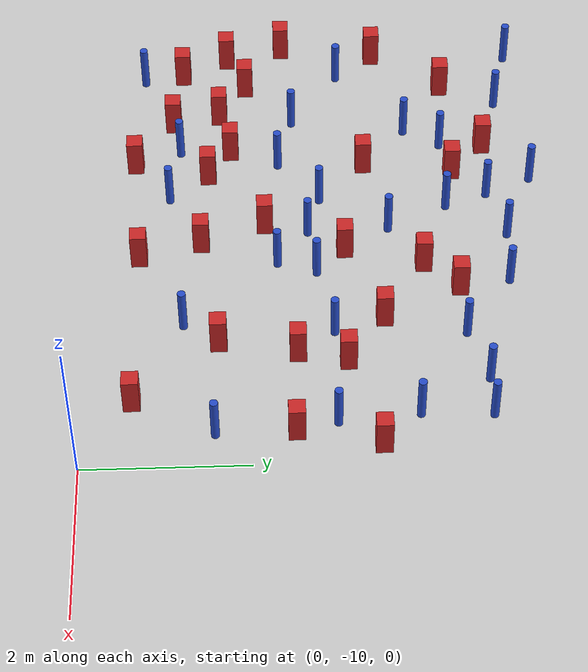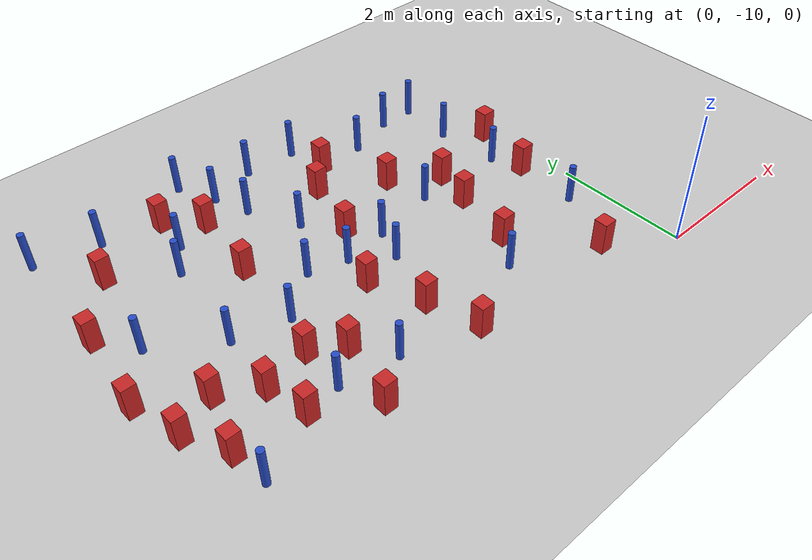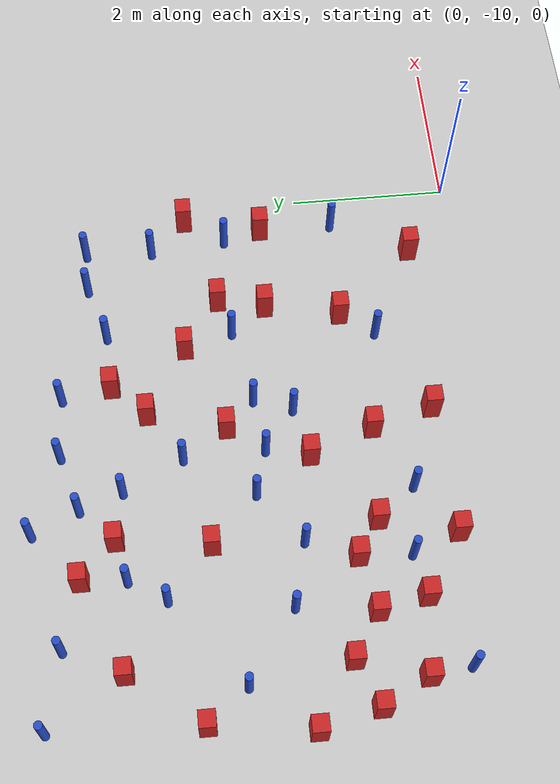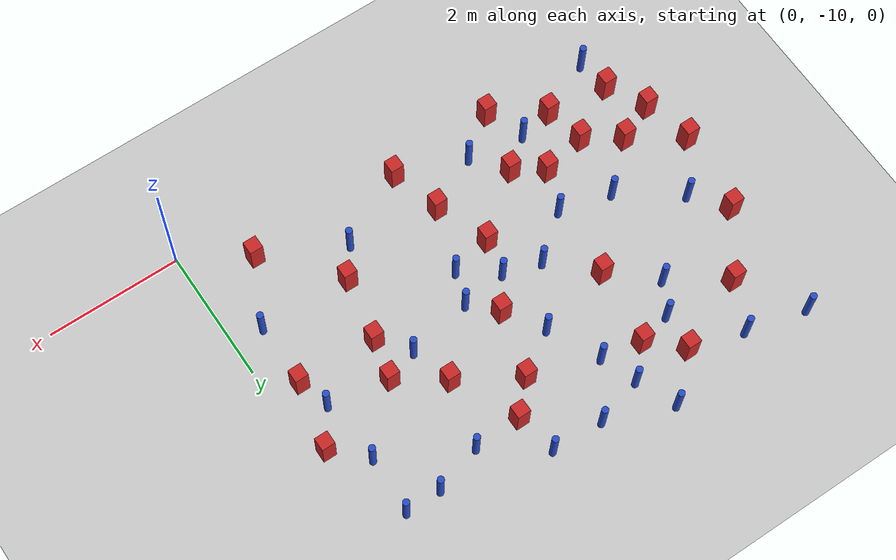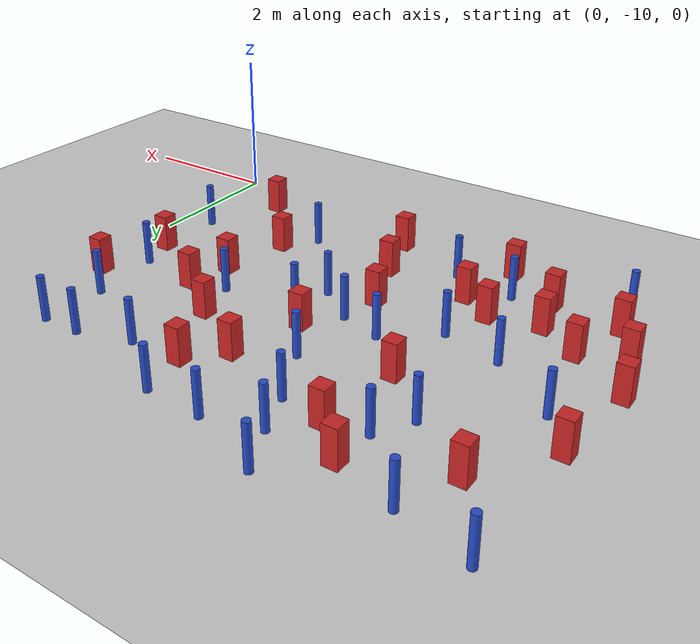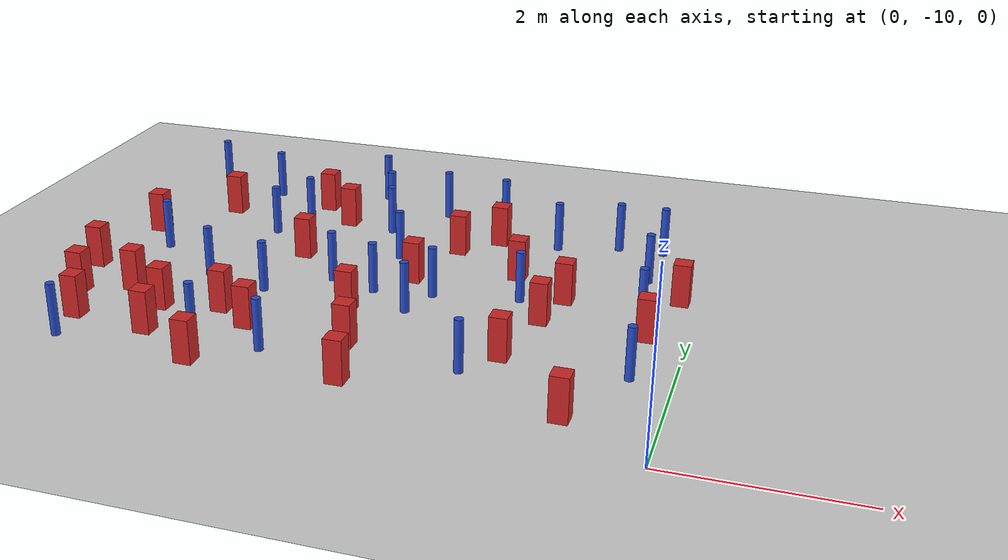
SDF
<sdf version="1.6">
 <world name="default">
  <model name="ground_plane">
   <static>1</static>
   <link name="link">
    <collision name="collision">
     <geometry><plane><normal>0 0 1</normal><size>100 100</size></plane></geometry>
     <surface><friction><ode><mu>100</mu><mu2>50</mu2></ode></friction></surface>
    </collision>
    <visual name="visual">
     <cast_shadows>0</cast_shadows>
     <geometry><plane><normal>0 0 1</normal><size>100 100</size></plane></geometry>
     <material>
      <ambient>1.0 1.0 1.0 1.0</ambient>
      <diffuse>0.8 0.8 0.8 1.0</diffuse>
      <specular>0.01 0.01 0.01 1.000000</specular>
     </material>
    </visual>
   </link>
  </model>
  <model name="pole_obstacle7">
   <static>true</static>
   <pose>-1.17192480887 -5.19381114242 -3.09024884793e-07 -7.19054271912e-07 -2.11315075134e-07 -1.93935509265e-07</pose>
   <link name="link">
    <pose>0 0 0.3 0 -0 0</pose>
    <inertial>
     <mass>1</mass>
     <inertia><ixx>0.145833</ixx><ixy>0</ixy><ixz>0</ixz><iyy>0.145833</iyy><iyz>0</iyz><izz>0.125</izz></inertia>
    </inertial>
    <collision name="collision">
     <geometry><cylinder><radius>0.05</radius><length>.6</length></cylinder></geometry>
    </collision>
    <visual name="visual">
     <geometry><cylinder><radius>0.05</radius><length>.6</length></cylinder></geometry>
     <material>
      <script><name>Gazebo/Blue</name><uri>file://media/materials/scripts/gazebo.material</uri></script>
     </material>
    </visual>
   </link>
  </model>
  <model name="pole_obstacle9">
   <static>true</static>
   <pose>-1.88588892181 -5.40821671252 -3.09024884793e-07 -7.19054271912e-07 -2.11315075134e-07 -1.93935509265e-07</pose>
   <link name="link">
    <pose>0 0 0.3 0 -0 0</pose>
    <inertial>
     <mass>1</mass>
     <inertia><ixx>0.145833</ixx><ixy>0</ixy><ixz>0</ixz><iyy>0.145833</iyy><iyz>0</iyz><izz>0.125</izz></inertia>
    </inertial>
    <collision name="collision">
     <geometry><cylinder><radius>0.05</radius><length>.6</length></cylinder></geometry>
    </collision>
    <visual name="visual">
     <geometry><cylinder><radius>0.05</radius><length>.6</length></cylinder></geometry>
     <material>
      <script><name>Gazebo/Blue</name><uri>file://media/materials/scripts/gazebo.material</uri></script>
     </material>
    </visual>
   </link>
  </model>
  <model name="pole_obstacle10">
   <static>true</static>
   <pose>-3.60791752947 -7.27064303545 -3.09024884793e-07 -7.19054271912e-07 -2.11315075134e-07 -1.93935509266e-07</pose>
   <link name="link">
    <pose>0 0 0.3 0 -0 0</pose>
    <inertial>
     <mass>1</mass>
     <inertia><ixx>0.145833</ixx><ixy>0</ixy><ixz>0</ixz><iyy>0.145833</iyy><iyz>0</iyz><izz>0.125</izz></inertia>
    </inertial>
    <collision name="collision">
     <geometry><cylinder><radius>0.05</radius><length>.6</length></cylinder></geometry>
    </collision>
    <visual name="visual">
     <geometry><cylinder><radius>0.05</radius><length>.6</length></cylinder></geometry>
     <material>
      <script><name>Gazebo/Blue</name><uri>file://media/materials/scripts/gazebo.material</uri></script>
     </material>
    </visual>
   </link>
  </model>
  <model name="pole_obstacle12">
   <static>true</static>
   <pose>-0.575961744489 -7.00694699162 -3.09024884793e-07 -7.19054271912e-07 -2.11315075129e-07 -1.93935509261e-07</pose>
   <link name="link">
    <pose>0 0 0.3 0 -0 0</pose>
    <inertial>
     <mass>1</mass>
     <inertia><ixx>0.145833</ixx><ixy>0</ixy><ixz>0</ixz><iyy>0.145833</iyy><iyz>0</iyz><izz>0.125</izz></inertia>
    </inertial>
    <collision name="collision">
     <geometry><cylinder><radius>0.05</radius><length>.6</length></cylinder></geometry>
    </collision>
    <visual name="visual">
     <geometry><cylinder><radius>0.05</radius><length>.6</length></cylinder></geometry>
     <material>
      <script><name>Gazebo/Blue</name><uri>file://media/materials/scripts/gazebo.material</uri></script>
     </material>
    </visual>
   </link>
  </model>
  <model name="pole_obstacle15">
   <static>true</static>
   <pose>-4.20136053964 -4.98345175366 -3.09024884793e-07 -7.19054271911e-07 -2.1131507516e-07 -1.93935509277e-07</pose>
   <link name="link">
    <pose>0 0 0.3 0 -0 0</pose>
    <inertial>
     <mass>1</mass>
     <inertia><ixx>0.145833</ixx><ixy>0</ixy><ixz>0</ixz><iyy>0.145833</iyy><iyz>0</iyz><izz>0.125</izz></inertia>
    </inertial>
    <collision name="collision">
     <geometry><cylinder><radius>0.05</radius><length>.6</length></cylinder></geometry>
    </collision>
    <visual name="visual">
     <geometry><cylinder><radius>0.05</radius><length>.6</length></cylinder></geometry>
     <material>
      <script><name>Gazebo/Blue</name><uri>file://media/materials/scripts/gazebo.material</uri></script>
     </material>
    </visual>
   </link>
  </model>
  <model name="pole_obstacle26">
   <static>true</static>
   <pose>-0.443716990972 -8.43226374889 -3.09024884793e-07 -7.19054271911e-07 -2.11315075166e-07 -1.93935509282e-07</pose>
   <link name="link">
    <pose>0 0 0.3 0 -0 0</pose>
    <inertial>
     <mass>1</mass>
     <inertia><ixx>0.145833</ixx><ixy>0</ixy><ixz>0</ixz><iyy>0.145833</iyy><iyz>0</iyz><izz>0.125</izz></inertia>
    </inertial>
    <collision name="collision">
     <geometry><cylinder><radius>0.05</radius><length>.6</length></cylinder></geometry>
    </collision>
    <visual name="visual">
     <geometry><cylinder><radius>0.05</radius><length>.6</length></cylinder></geometry>
     <material>
      <script><name>Gazebo/Blue</name><uri>file://media/materials/scripts/gazebo.material</uri></script>
     </material>
    </visual>
   </link>
  </model>
  <model name="square_post_obstacle22">
   <static>true</static>
   <pose>-2.60363259935 -5.43729169527 -4.36207812815e-07 3.75137919937e-06 9.77721102514e-07 2.47381364184e-05</pose>
   <link name="link">
    <pose>0 0 0.25 0 -0 0</pose>
    <inertial>
     <mass>100</mass>
     <inertia>
      <ixx>0.166667</ixx>
      <ixy>0</ixy>
      <ixz>0</ixz>
      <iyy>0.166667</iyy>
      <iyz>0</iyz>
      <izz>0.166667</izz>
     </inertia>
    </inertial>
    <collision name="collision"><geometry><box><size>.2 .2 .5</size></box></geometry></collision>
    <visual name="visual">
     <geometry><box><size>.2 .2 .5</size></box></geometry>
     <material>
      <script><name>Gazebo/Red</name><uri>file://media/materials/scripts/gazebo.material</uri></script>
     </material>
    </visual>
   </link>
  </model>
  <model name="square_post_obstacle25">
   <static>true</static>
   <pose>-6.83598262515 -6.32217190997 -4.36207812815e-07 3.75137919937e-06 9.77721102514e-07 2.47381364184e-05</pose>
   <link name="link">
    <pose>0 0 0.25 0 -0 0</pose>
    <inertial>
     <mass>100</mass>
     <inertia>
      <ixx>0.166667</ixx>
      <ixy>0</ixy>
      <ixz>0</ixz>
      <iyy>0.166667</iyy>
      <iyz>0</iyz>
      <izz>0.166667</izz>
     </inertia>
    </inertial>
    <collision name="collision"><geometry><box><size>.2 .2 .5</size></box></geometry></collision>
    <visual name="visual">
     <geometry><box><size>.2 .2 .5</size></box></geometry>
     <material>
      <script><name>Gazebo/Red</name><uri>file://media/materials/scripts/gazebo.material</uri></script>
     </material>
    </visual>
   </link>
  </model>
  <model name="pole_obstacle32">
   <static>true</static>
   <pose>-4.00805264346 -5.51298378663 -3.09024884793e-07 -7.19054271911e-07 -2.11315075165e-07 -1.9393550928e-07</pose>
   <link name="link">
    <pose>0 0 0.3 0 -0 0</pose>
    <inertial>
     <mass>1</mass>
     <inertia><ixx>0.145833</ixx><ixy>0</ixy><ixz>0</ixz><iyy>0.145833</iyy><iyz>0</iyz><izz>0.125</izz></inertia>
    </inertial>
    <collision name="collision">
     <geometry><cylinder><radius>0.05</radius><length>.6</length></cylinder></geometry>
    </collision>
    <visual name="visual">
     <geometry><cylinder><radius>0.05</radius><length>.6</length></cylinder></geometry>
     <material>
      <script><name>Gazebo/Blue</name><uri>file://media/materials/scripts/gazebo.material</uri></script>
     </material>
    </visual>
   </link>
  </model>
  <model name="pole_obstacle34">
   <static>true</static>
   <pose>-5.07428625589 -8.86969374546 -3.09024884793e-07 -7.19054271912e-07 -2.1131507513e-07 -1.93935509261e-07</pose>
   <link name="link">
    <pose>0 0 0.3 0 -0 0</pose>
    <inertial>
     <mass>1</mass>
     <inertia><ixx>0.145833</ixx><ixy>0</ixy><ixz>0</ixz><iyy>0.145833</iyy><iyz>0</iyz><izz>0.125</izz></inertia>
    </inertial>
    <collision name="collision">
     <geometry><cylinder><radius>0.05</radius><length>.6</length></cylinder></geometry>
    </collision>
    <visual name="visual">
     <geometry><cylinder><radius>0.05</radius><length>.6</length></cylinder></geometry>
     <material>
      <script><name>Gazebo/Blue</name><uri>file://media/materials/scripts/gazebo.material</uri></script>
     </material>
    </visual>
   </link>
  </model>
  <model name="pole_obstacle35">
   <static>true</static>
   <pose>-2.11056786974 -8.8134225359 -3.09024884848e-07 -7.19054271902e-07 -2.11315075199e-07 -1.93935509286e-07</pose>
   <link name="link">
    <pose>0 0 0.3 0 -0 0</pose>
    <inertial>
     <mass>1</mass>
     <inertia><ixx>0.145833</ixx><ixy>0</ixy><ixz>0</ixz><iyy>0.145833</iyy><iyz>0</iyz><izz>0.125</izz></inertia>
    </inertial>
    <collision name="collision">
     <geometry><cylinder><radius>0.05</radius><length>.6</length></cylinder></geometry>
    </collision>
    <visual name="visual">
     <geometry><cylinder><radius>0.05</radius><length>.6</length></cylinder></geometry>
     <material>
      <script><name>Gazebo/Blue</name><uri>file://media/materials/scripts/gazebo.material</uri></script>
     </material>
    </visual>
   </link>
  </model>
  <model name="square_post_obstacle33">
   <static>true</static>
   <pose>-1.61386421451 -7.44447705341 -4.36207812815e-07 3.75137919937e-06 9.77721102514e-07 2.47381364184e-05</pose>
   <link name="link">
    <pose>0 0 0.25 0 -0 0</pose>
    <inertial>
     <mass>100</mass>
     <inertia>
      <ixx>0.166667</ixx>
      <ixy>0</ixy>
      <ixz>0</ixz>
      <iyy>0.166667</iyy>
      <iyz>0</iyz>
      <izz>0.166667</izz>
     </inertia>
    </inertial>
    <collision name="collision"><geometry><box><size>.2 .2 .5</size></box></geometry></collision>
    <visual name="visual">
     <geometry><box><size>.2 .2 .5</size></box></geometry>
     <material>
      <script><name>Gazebo/Red</name><uri>file://media/materials/scripts/gazebo.material</uri></script>
     </material>
    </visual>
   </link>
  </model>
  <model name="pole_obstacle45">
   <static>true</static>
   <pose>-3.49073242893 -4.77916171795 -3.09024884793e-07 -7.19054271912e-07 -2.11315075134e-07 -1.93935509266e-07</pose>
   <link name="link">
    <pose>0 0 0.3 0 -0 0</pose>
    <inertial>
     <mass>1</mass>
     <inertia><ixx>0.145833</ixx><ixy>0</ixy><ixz>0</ixz><iyy>0.145833</iyy><iyz>0</iyz><izz>0.125</izz></inertia>
    </inertial>
    <collision name="collision">
     <geometry><cylinder><radius>0.05</radius><length>.6</length></cylinder></geometry>
    </collision>
    <visual name="visual">
     <geometry><cylinder><radius>0.05</radius><length>.6</length></cylinder></geometry>
     <material>
      <script><name>Gazebo/Blue</name><uri>file://media/materials/scripts/gazebo.material</uri></script>
     </material>
    </visual>
   </link>
  </model>
  <model name="pole_obstacle46">
   <static>true</static>
   <pose>-3.09255112239 -7.6583903022 -3.09024884793e-07 -7.19054271912e-07 -2.11315075134e-07 -1.93935509266e-07</pose>
   <link name="link">
    <pose>0 0 0.3 0 -0 0</pose>
    <inertial>
     <mass>1</mass>
     <inertia><ixx>0.145833</ixx><ixy>0</ixy><ixz>0</ixz><iyy>0.145833</iyy><iyz>0</iyz><izz>0.125</izz></inertia>
    </inertial>
    <collision name="collision">
     <geometry><cylinder><radius>0.05</radius><length>.6</length></cylinder></geometry>
    </collision>
    <visual name="visual">
     <geometry><cylinder><radius>0.05</radius><length>.6</length></cylinder></geometry>
     <material>
      <script><name>Gazebo/Blue</name><uri>file://media/materials/scripts/gazebo.material</uri></script>
     </material>
    </visual>
   </link>
  </model>
  <model name="pole_obstacle47">
   <static>true</static>
   <pose>-6.76970011362 -4.52454817344 -3.09024884793e-07 -7.19054271911e-07 -2.1131507516e-07 -1.93935509277e-07</pose>
   <link name="link">
    <pose>0 0 0.3 0 -0 0</pose>
    <inertial>
     <mass>1</mass>
     <inertia><ixx>0.145833</ixx><ixy>0</ixy><ixz>0</ixz><iyy>0.145833</iyy><iyz>0</iyz><izz>0.125</izz></inertia>
    </inertial>
    <collision name="collision">
     <geometry><cylinder><radius>0.05</radius><length>.6</length></cylinder></geometry>
    </collision>
    <visual name="visual">
     <geometry><cylinder><radius>0.05</radius><length>.6</length></cylinder></geometry>
     <material>
      <script><name>Gazebo/Blue</name><uri>file://media/materials/scripts/gazebo.material</uri></script>
     </material>
    </visual>
   </link>
  </model>
  <model name="pole_obstacle48">
   <static>true</static>
   <pose>-4.4605507308 -4.40775130411 -3.09024884793e-07 -7.19054271911e-07 -2.1131507516e-07 -1.93935509277e-07</pose>
   <link name="link">
    <pose>0 0 0.3 0 -0 0</pose>
    <inertial>
     <mass>1</mass>
     <inertia><ixx>0.145833</ixx><ixy>0</ixy><ixz>0</ixz><iyy>0.145833</iyy><iyz>0</iyz><izz>0.125</izz></inertia>
    </inertial>
    <collision name="collision">
     <geometry><cylinder><radius>0.05</radius><length>.6</length></cylinder></geometry>
    </collision>
    <visual name="visual">
     <geometry><cylinder><radius>0.05</radius><length>.6</length></cylinder></geometry>
     <material>
      <script><name>Gazebo/Blue</name><uri>file://media/materials/scripts/gazebo.material</uri></script>
     </material>
    </visual>
   </link>
  </model>
  <model name="pole_obstacle61">
   <static>true</static>
   <pose>-5.11480661546 -5.51708493062 -3.09024884793e-07 -7.19054271911e-07 -2.1131507516e-07 -1.93935509277e-07</pose>
   <link name="link">
    <pose>0 0 0.3 0 -0 0</pose>
    <inertial>
     <mass>1</mass>
     <inertia><ixx>0.145833</ixx><ixy>0</ixy><ixz>0</ixz><iyy>0.145833</iyy><iyz>0</iyz><izz>0.125</izz></inertia>
    </inertial>
    <collision name="collision">
     <geometry><cylinder><radius>0.05</radius><length>.6</length></cylinder></geometry>
    </collision>
    <visual name="visual">
     <geometry><cylinder><radius>0.05</radius><length>.6</length></cylinder></geometry>
     <material>
      <script><name>Gazebo/Blue</name><uri>file://media/materials/scripts/gazebo.material</uri></script>
     </material>
    </visual>
   </link>
  </model>
  <model name="square_post_obstacle49">
   <static>true</static>
   <pose>-6.18961945717 -5.43991731527 -4.36207812815e-07 3.75137919937e-06 9.77721102514e-07 2.47381364184e-05</pose>
   <link name="link">
    <pose>0 0 0.25 0 -0 0</pose>
    <inertial>
     <mass>100</mass>
     <inertia>
      <ixx>0.166667</ixx>
      <ixy>0</ixy>
      <ixz>0</ixz>
      <iyy>0.166667</iyy>
      <iyz>0</iyz>
      <izz>0.166667</izz>
     </inertia>
    </inertial>
    <collision name="collision"><geometry><box><size>.2 .2 .5</size></box></geometry></collision>
    <visual name="visual">
     <geometry><box><size>.2 .2 .5</size></box></geometry>
     <material>
      <script><name>Gazebo/Red</name><uri>file://media/materials/scripts/gazebo.material</uri></script>
     </material>
    </visual>
   </link>
  </model>
  <model name="pole_obstacle70">
   <static>true</static>
   <pose>-0.669513889118 -6.04324084495 -3.09024884793e-07 -7.19054271912e-07 -2.11315075129e-07 -1.93935509261e-07</pose>
   <link name="link">
    <pose>0 0 0.3 0 -0 0</pose>
    <inertial>
     <mass>1</mass>
     <inertia><ixx>0.145833</ixx><ixy>0</ixy><ixz>0</ixz><iyy>0.145833</iyy><iyz>0</iyz><izz>0.125</izz></inertia>
    </inertial>
    <collision name="collision">
     <geometry><cylinder><radius>0.05</radius><length>.6</length></cylinder></geometry>
    </collision>
    <visual name="visual">
     <geometry><cylinder><radius>0.05</radius><length>.6</length></cylinder></geometry>
     <material>
      <script><name>Gazebo/Blue</name><uri>file://media/materials/scripts/gazebo.material</uri></script>
     </material>
    </visual>
   </link>
  </model>
  <model name="pole_obstacle72">
   <static>true</static>
   <pose>-6.44296886293 -9.34983753668 -3.09024884793e-07 -7.19054271912e-07 -2.1131507513e-07 -1.93935509261e-07</pose>
   <link name="link">
    <pose>0 0 0.3 0 -0 0</pose>
    <inertial>
     <mass>1</mass>
     <inertia><ixx>0.145833</ixx><ixy>0</ixy><ixz>0</ixz><iyy>0.145833</iyy><iyz>0</iyz><izz>0.125</izz></inertia>
    </inertial>
    <collision name="collision">
     <geometry><cylinder><radius>0.05</radius><length>.6</length></cylinder></geometry>
    </collision>
    <visual name="visual">
     <geometry><cylinder><radius>0.05</radius><length>.6</length></cylinder></geometry>
     <material>
      <script><name>Gazebo/Blue</name><uri>file://media/materials/scripts/gazebo.material</uri></script>
     </material>
    </visual>
   </link>
  </model>
  <model name="pole_obstacle75">
   <static>true</static>
   <pose>-0.634489318185 -5.19160763943 -3.09024884793e-07 -7.19054271912e-07 -2.11315075129e-07 -1.93935509261e-07</pose>
   <link name="link">
    <pose>0 0 0.3 0 -0 0</pose>
    <inertial>
     <mass>1</mass>
     <inertia><ixx>0.145833</ixx><ixy>0</ixy><ixz>0</ixz><iyy>0.145833</iyy><iyz>0</iyz><izz>0.125</izz></inertia>
    </inertial>
    <collision name="collision">
     <geometry><cylinder><radius>0.05</radius><length>.6</length></cylinder></geometry>
    </collision>
    <visual name="visual">
     <geometry><cylinder><radius>0.05</radius><length>.6</length></cylinder></geometry>
     <material>
      <script><name>Gazebo/Blue</name><uri>file://media/materials/scripts/gazebo.material</uri></script>
     </material>
    </visual>
   </link>
  </model>
  <model name="pole_obstacle86">
   <static>true</static>
   <pose>-4.23149814462 -8.99944612008 -3.09024884793e-07 -7.19054271912e-07 -2.1131507513e-07 -1.93935509261e-07</pose>
   <link name="link">
    <pose>0 0 0.3 0 -0 0</pose>
    <inertial>
     <mass>1</mass>
     <inertia><ixx>0.145833</ixx><ixy>0</ixy><ixz>0</ixz><iyy>0.145833</iyy><iyz>0</iyz><izz>0.125</izz></inertia>
    </inertial>
    <collision name="collision">
     <geometry><cylinder><radius>0.05</radius><length>.6</length></cylinder></geometry>
    </collision>
    <visual name="visual">
     <geometry><cylinder><radius>0.05</radius><length>.6</length></cylinder></geometry>
     <material>
      <script><name>Gazebo/Blue</name><uri>file://media/materials/scripts/gazebo.material</uri></script>
     </material>
    </visual>
   </link>
  </model>
  <model name="square_post_obstacle77">
   <static>true</static>
   <pose>-6.50684947326 -8.84548623912 -4.36207812815e-07 3.75137919937e-06 9.77721102514e-07 2.47381364184e-05</pose>
   <link name="link">
    <pose>0 0 0.25 0 -0 0</pose>
    <inertial>
     <mass>100</mass>
     <inertia>
      <ixx>0.166667</ixx>
      <ixy>0</ixy>
      <ixz>0</ixz>
      <iyy>0.166667</iyy>
      <iyz>0</iyz>
      <izz>0.166667</izz>
     </inertia>
    </inertial>
    <collision name="collision"><geometry><box><size>.2 .2 .5</size></box></geometry></collision>
    <visual name="visual">
     <geometry><box><size>.2 .2 .5</size></box></geometry>
     <material>
      <script><name>Gazebo/Red</name><uri>file://media/materials/scripts/gazebo.material</uri></script>
     </material>
    </visual>
   </link>
  </model>
  <model name="square_post_obstacle82">
   <static>true</static>
   <pose>-3.00997916883 -5.8592108896 -4.36207812815e-07 3.75137919937e-06 9.77721102514e-07 2.47381364184e-05</pose>
   <link name="link">
    <pose>0 0 0.25 0 -0 0</pose>
    <inertial>
     <mass>100</mass>
     <inertia>
      <ixx>0.166667</ixx>
      <ixy>0</ixy>
      <ixz>0</ixz>
      <iyy>0.166667</iyy>
      <iyz>0</iyz>
      <izz>0.166667</izz>
     </inertia>
    </inertial>
    <collision name="collision"><geometry><box><size>.2 .2 .5</size></box></geometry></collision>
    <visual name="visual">
     <geometry><box><size>.2 .2 .5</size></box></geometry>
     <material>
      <script><name>Gazebo/Red</name><uri>file://media/materials/scripts/gazebo.material</uri></script>
     </material>
    </visual>
   </link>
  </model>
  <model name="square_post_obstacle86">
   <static>true</static>
   <pose>-5.0423720441 -8.22550152524 -4.36207812815e-07 3.75137919937e-06 9.77721102514e-07 2.47381364184e-05</pose>
   <link name="link">
    <pose>0 0 0.25 0 -0 0</pose>
    <inertial>
     <mass>100</mass>
     <inertia>
      <ixx>0.166667</ixx>
      <ixy>0</ixy>
      <ixz>0</ixz>
      <iyy>0.166667</iyy>
      <iyz>0</iyz>
      <izz>0.166667</izz>
     </inertia>
    </inertial>
    <collision name="collision"><geometry><box><size>.2 .2 .5</size></box></geometry></collision>
    <visual name="visual">
     <geometry><box><size>.2 .2 .5</size></box></geometry>
     <material>
      <script><name>Gazebo/Red</name><uri>file://media/materials/scripts/gazebo.material</uri></script>
     </material>
    </visual>
   </link>
  </model>
  <model name="pole_obstacle102">
   <static>true</static>
   <pose>-5.87034168437 -4.7351803226 -3.09024884793e-07 -7.19054271911e-07 -2.1131507516e-07 -1.93935509277e-07</pose>
   <link name="link">
    <pose>0 0 0.3 0 -0 0</pose>
    <inertial>
     <mass>1</mass>
     <inertia><ixx>0.145833</ixx><ixy>0</ixy><ixz>0</ixz><iyy>0.145833</iyy><iyz>0</iyz><izz>0.125</izz></inertia>
    </inertial>
    <collision name="collision">
     <geometry><cylinder><radius>0.05</radius><length>.6</length></cylinder></geometry>
    </collision>
    <visual name="visual">
     <geometry><cylinder><radius>0.05</radius><length>.6</length></cylinder></geometry>
     <material>
      <script><name>Gazebo/Blue</name><uri>file://media/materials/scripts/gazebo.material</uri></script>
     </material>
    </visual>
   </link>
  </model>
  <model name="square_post_obstacle99">
   <static>true</static>
   <pose>-5.06439077573 -4.97075500885 -4.36207812815e-07 3.75137919937e-06 9.77721102514e-07 2.47381364184e-05</pose>
   <link name="link">
    <pose>0 0 0.25 0 -0 0</pose>
    <inertial>
     <mass>100</mass>
     <inertia>
      <ixx>0.166667</ixx>
      <ixy>0</ixy>
      <ixz>0</ixz>
      <iyy>0.166667</iyy>
      <iyz>0</iyz>
      <izz>0.166667</izz>
     </inertia>
    </inertial>
    <collision name="collision"><geometry><box><size>.2 .2 .5</size></box></geometry></collision>
    <visual name="visual">
     <geometry><box><size>.2 .2 .5</size></box></geometry>
     <material>
      <script><name>Gazebo/Red</name><uri>file://media/materials/scripts/gazebo.material</uri></script>
     </material>
    </visual>
   </link>
  </model>
  <model name="square_post_obstacle104">
   <static>true</static>
   <pose>-2.1359244867 -6.38748363729 -4.36207812815e-07 3.75137919937e-06 9.77721102514e-07 2.47381364184e-05</pose>
   <link name="link">
    <pose>0 0 0.25 0 -0 0</pose>
    <inertial>
     <mass>100</mass>
     <inertia>
      <ixx>0.166667</ixx>
      <ixy>0</ixy>
      <ixz>0</ixz>
      <iyy>0.166667</iyy>
      <iyz>0</iyz>
      <izz>0.166667</izz>
     </inertia>
    </inertial>
    <collision name="collision"><geometry><box><size>.2 .2 .5</size></box></geometry></collision>
    <visual name="visual">
     <geometry><box><size>.2 .2 .5</size></box></geometry>
     <material>
      <script><name>Gazebo/Red</name><uri>file://media/materials/scripts/gazebo.material</uri></script>
     </material>
    </visual>
   </link>
  </model>
  <model name="square_post_obstacle113">
   <static>true</static>
   <pose>-1.47511147248 -6.85062008639 -4.36207812815e-07 3.75137919937e-06 9.77721102514e-07 2.47381364184e-05</pose>
   <link name="link">
    <pose>0 0 0.25 0 -0 0</pose>
    <inertial>
     <mass>100</mass>
     <inertia>
      <ixx>0.166667</ixx>
      <ixy>0</ixy>
      <ixz>0</ixz>
      <iyy>0.166667</iyy>
      <iyz>0</iyz>
      <izz>0.166667</izz>
     </inertia>
    </inertial>
    <collision name="collision"><geometry><box><size>.2 .2 .5</size></box></geometry></collision>
    <visual name="visual">
     <geometry><box><size>.2 .2 .5</size></box></geometry>
     <material>
      <script><name>Gazebo/Red</name><uri>file://media/materials/scripts/gazebo.material</uri></script>
     </material>
    </visual>
   </link>
  </model>
  <model name="pole_obstacle124">
   <static>true</static>
   <pose>-2.9258732631 -7.17973908602 -3.09024884793e-07 -7.19054271912e-07 -2.11315075134e-07 -1.93935509266e-07</pose>
   <link name="link">
    <pose>0 0 0.3 0 -0 0</pose>
    <inertial>
     <mass>1</mass>
     <inertia><ixx>0.145833</ixx><ixy>0</ixy><ixz>0</ixz><iyy>0.145833</iyy><iyz>0</iyz><izz>0.125</izz></inertia>
    </inertial>
    <collision name="collision">
     <geometry><cylinder><radius>0.05</radius><length>.6</length></cylinder></geometry>
    </collision>
    <visual name="visual">
     <geometry><cylinder><radius>0.05</radius><length>.6</length></cylinder></geometry>
     <material>
      <script><name>Gazebo/Blue</name><uri>file://media/materials/scripts/gazebo.material</uri></script>
     </material>
    </visual>
   </link>
  </model>
  <model name="square_post_obstacle130">
   <static>true</static>
   <pose>-4.60978189023 -5.39837116539 -4.36207812815e-07 3.75137919937e-06 9.77721102514e-07 2.47381364184e-05</pose>
   <link name="link">
    <pose>0 0 0.25 0 -0 0</pose>
    <inertial>
     <mass>100</mass>
     <inertia>
      <ixx>0.166667</ixx>
      <ixy>0</ixy>
      <ixz>0</ixz>
      <iyy>0.166667</iyy>
      <iyz>0</iyz>
      <izz>0.166667</izz>
     </inertia>
    </inertial>
    <collision name="collision"><geometry><box><size>.2 .2 .5</size></box></geometry></collision>
    <visual name="visual">
     <geometry><box><size>.2 .2 .5</size></box></geometry>
     <material>
      <script><name>Gazebo/Red</name><uri>file://media/materials/scripts/gazebo.material</uri></script>
     </material>
    </visual>
   </link>
  </model>
  <model name="square_post_obstacle135">
   <static>true</static>
   <pose>-5.71484325983 -8.36837992422 -4.36207812815e-07 3.75137919937e-06 9.77721102514e-07 2.47381364184e-05</pose>
   <link name="link">
    <pose>0 0 0.25 0 -0 0</pose>
    <inertial>
     <mass>100</mass>
     <inertia>
      <ixx>0.166667</ixx>
      <ixy>0</ixy>
      <ixz>0</ixz>
      <iyy>0.166667</iyy>
      <iyz>0</iyz>
      <izz>0.166667</izz>
     </inertia>
    </inertial>
    <collision name="collision"><geometry><box><size>.2 .2 .5</size></box></geometry></collision>
    <visual name="visual">
     <geometry><box><size>.2 .2 .5</size></box></geometry>
     <material>
      <script><name>Gazebo/Red</name><uri>file://media/materials/scripts/gazebo.material</uri></script>
     </material>
    </visual>
   </link>
  </model>
  <model name="square_post_obstacle137">
   <static>true</static>
   <pose>-3.42375097525 -8.60024657302 -4.36207812815e-07 3.75137919937e-06 9.77721102514e-07 2.47381364184e-05</pose>
   <link name="link">
    <pose>0 0 0.25 0 -0 0</pose>
    <inertial>
     <mass>100</mass>
     <inertia>
      <ixx>0.166667</ixx>
      <ixy>0</ixy>
      <ixz>0</ixz>
      <iyy>0.166667</iyy>
      <iyz>0</iyz>
      <izz>0.166667</izz>
     </inertia>
    </inertial>
    <collision name="collision"><geometry><box><size>.2 .2 .5</size></box></geometry></collision>
    <visual name="visual">
     <geometry><box><size>.2 .2 .5</size></box></geometry>
     <material>
      <script><name>Gazebo/Red</name><uri>file://media/materials/scripts/gazebo.material</uri></script>
     </material>
    </visual>
   </link>
  </model>
  <model name="pole_obstacle142">
   <static>true</static>
   <pose>-4.81215075019 -7.62097540063 -3.09024884793e-07 -7.19054271911e-07 -2.1131507516e-07 -1.93935509277e-07</pose>
   <link name="link">
    <pose>0 0 0.3 0 -0 0</pose>
    <inertial>
     <mass>1</mass>
     <inertia><ixx>0.145833</ixx><ixy>0</ixy><ixz>0</ixz><iyy>0.145833</iyy><iyz>0</iyz><izz>0.125</izz></inertia>
    </inertial>
    <collision name="collision">
     <geometry><cylinder><radius>0.05</radius><length>.6</length></cylinder></geometry>
    </collision>
    <visual name="visual">
     <geometry><cylinder><radius>0.05</radius><length>.6</length></cylinder></geometry>
     <material>
      <script><name>Gazebo/Blue</name><uri>file://media/materials/scripts/gazebo.material</uri></script>
     </material>
    </visual>
   </link>
  </model>
  <model name="pole_obstacle144">
   <static>true</static>
   <pose>-3.64052700579 -6.26282328484 -3.09024884848e-07 -7.19054271903e-07 -2.11315075193e-07 -1.93935509285e-07</pose>
   <link name="link">
    <pose>0 0 0.3 0 -0 0</pose>
    <inertial>
     <mass>1</mass>
     <inertia><ixx>0.145833</ixx><ixy>0</ixy><ixz>0</ixz><iyy>0.145833</iyy><iyz>0</iyz><izz>0.125</izz></inertia>
    </inertial>
    <collision name="collision">
     <geometry><cylinder><radius>0.05</radius><length>.6</length></cylinder></geometry>
    </collision>
    <visual name="visual">
     <geometry><cylinder><radius>0.05</radius><length>.6</length></cylinder></geometry>
     <material>
      <script><name>Gazebo/Blue</name><uri>file://media/materials/scripts/gazebo.material</uri></script>
     </material>
    </visual>
   </link>
  </model>
  <model name="square_post_obstacle140">
   <static>true</static>
   <pose>-6.99396478425 -7.53718101062 -4.36207812815e-07 3.75137919937e-06 9.77721102514e-07 2.47381364184e-05</pose>
   <link name="link">
    <pose>0 0 0.25 0 -0 0</pose>
    <inertial>
     <mass>100</mass>
     <inertia>
      <ixx>0.166667</ixx>
      <ixy>0</ixy>
      <ixz>0</ixz>
      <iyy>0.166667</iyy>
      <iyz>0</iyz>
      <izz>0.166667</izz>
     </inertia>
    </inertial>
    <collision name="collision"><geometry><box><size>.2 .2 .5</size></box></geometry></collision>
    <visual name="visual">
     <geometry><box><size>.2 .2 .5</size></box></geometry>
     <material>
      <script><name>Gazebo/Red</name><uri>file://media/materials/scripts/gazebo.material</uri></script>
     </material>
    </visual>
   </link>
  </model>
  <model name="pole_obstacle146">
   <static>true</static>
   <pose>-6.45228818709 -6.81306688356 -3.09024884793e-07 -7.19054271911e-07 -2.1131507516e-07 -1.93935509277e-07</pose>
   <link name="link">
    <pose>0 0 0.3 0 -0 0</pose>
    <inertial>
     <mass>1</mass>
     <inertia><ixx>0.145833</ixx><ixy>0</ixy><ixz>0</ixz><iyy>0.145833</iyy><iyz>0</iyz><izz>0.125</izz></inertia>
    </inertial>
    <collision name="collision">
     <geometry><cylinder><radius>0.05</radius><length>.6</length></cylinder></geometry>
    </collision>
    <visual name="visual">
     <geometry><cylinder><radius>0.05</radius><length>.6</length></cylinder></geometry>
     <material>
      <script><name>Gazebo/Blue</name><uri>file://media/materials/scripts/gazebo.material</uri></script>
     </material>
    </visual>
   </link>
  </model>
  <model name="pole_obstacle155">
   <static>true</static>
   <pose>-2.71889394115 -4.81602667833 -3.09024884793e-07 -7.19054271912e-07 -2.11315075134e-07 -1.93935509266e-07</pose>
   <link name="link">
    <pose>0 0 0.3 0 -0 0</pose>
    <inertial>
     <mass>1</mass>
     <inertia><ixx>0.145833</ixx><ixy>0</ixy><ixz>0</ixz><iyy>0.145833</iyy><iyz>0</iyz><izz>0.125</izz></inertia>
    </inertial>
    <collision name="collision">
     <geometry><cylinder><radius>0.05</radius><length>.6</length></cylinder></geometry>
    </collision>
    <visual name="visual">
     <geometry><cylinder><radius>0.05</radius><length>.6</length></cylinder></geometry>
     <material>
      <script><name>Gazebo/Blue</name><uri>file://media/materials/scripts/gazebo.material</uri></script>
     </material>
    </visual>
   </link>
  </model>
  <model name="square_post_obstacle153">
   <static>true</static>
   <pose>-4.75866747 -6.52817540204 -4.36207812815e-07 3.75137919937e-06 9.77721102514e-07 2.47381364184e-05</pose>
   <link name="link">
    <pose>0 0 0.25 0 -0 0</pose>
    <inertial>
     <mass>100</mass>
     <inertia>
      <ixx>0.166667</ixx>
      <ixy>0</ixy>
      <ixz>0</ixz>
      <iyy>0.166667</iyy>
      <iyz>0</iyz>
      <izz>0.166667</izz>
     </inertia>
    </inertial>
    <collision name="collision"><geometry><box><size>.2 .2 .5</size></box></geometry></collision>
    <visual name="visual">
     <geometry><box><size>.2 .2 .5</size></box></geometry>
     <material>
      <script><name>Gazebo/Red</name><uri>file://media/materials/scripts/gazebo.material</uri></script>
     </material>
    </visual>
   </link>
  </model>
  <model name="pole_obstacle162">
   <static>true</static>
   <pose>-5.38712344847 -5.96969706663 -3.09024884793e-07 -7.19054271911e-07 -2.1131507516e-07 -1.93935509277e-07</pose>
   <link name="link">
    <pose>0 0 0.3 0 -0 0</pose>
    <inertial>
     <mass>1</mass>
     <inertia><ixx>0.145833</ixx><ixy>0</ixy><ixz>0</ixz><iyy>0.145833</iyy><iyz>0</iyz><izz>0.125</izz></inertia>
    </inertial>
    <collision name="collision">
     <geometry><cylinder><radius>0.05</radius><length>.6</length></cylinder></geometry>
    </collision>
    <visual name="visual">
     <geometry><cylinder><radius>0.05</radius><length>.6</length></cylinder></geometry>
     <material>
      <script><name>Gazebo/Blue</name><uri>file://media/materials/scripts/gazebo.material</uri></script>
     </material>
    </visual>
   </link>
  </model>
  <model name="square_post_obstacle163">
   <static>true</static>
   <pose>-0.443081437811 -7.48957332488 -4.36207812815e-07 3.75137919937e-06 9.77721102514e-07 2.47381364184e-05</pose>
   <link name="link">
    <pose>0 0 0.25 0 -0 0</pose>
    <inertial>
     <mass>100</mass>
     <inertia>
      <ixx>0.166667</ixx>
      <ixy>0</ixy>
      <ixz>0</ixz>
      <iyy>0.166667</iyy>
      <iyz>0</iyz>
      <izz>0.166667</izz>
     </inertia>
    </inertial>
    <collision name="collision"><geometry><box><size>.2 .2 .5</size></box></geometry></collision>
    <visual name="visual">
     <geometry><box><size>.2 .2 .5</size></box></geometry>
     <material>
      <script><name>Gazebo/Red</name><uri>file://media/materials/scripts/gazebo.material</uri></script>
     </material>
    </visual>
   </link>
  </model>
  <model name="square_post_obstacle165">
   <static>true</static>
   <pose>-3.7214431635 -7.80469909456 -4.36207812815e-07 3.75137919937e-06 9.77721102514e-07 2.47381364184e-05</pose>
   <link name="link">
    <pose>0 0 0.25 0 -0 0</pose>
    <inertial>
     <mass>100</mass>
     <inertia>
      <ixx>0.166667</ixx>
      <ixy>0</ixy>
      <ixz>0</ixz>
      <iyy>0.166667</iyy>
      <iyz>0</iyz>
      <izz>0.166667</izz>
     </inertia>
    </inertial>
    <collision name="collision"><geometry><box><size>.2 .2 .5</size></box></geometry></collision>
    <visual name="visual">
     <geometry><box><size>.2 .2 .5</size></box></geometry>
     <material>
      <script><name>Gazebo/Red</name><uri>file://media/materials/scripts/gazebo.material</uri></script>
     </material>
    </visual>
   </link>
  </model>
  <model name="square_post_obstacle180">
   <static>true</static>
   <pose>-4.6104812031 -8.51349091786 -4.36207812815e-07 3.75137919937e-06 9.77721102514e-07 2.47381364184e-05</pose>
   <link name="link">
    <pose>0 0 0.25 0 -0 0</pose>
    <inertial>
     <mass>100</mass>
     <inertia>
      <ixx>0.166667</ixx>
      <ixy>0</ixy>
      <ixz>0</ixz>
      <iyy>0.166667</iyy>
      <iyz>0</iyz>
      <izz>0.166667</izz>
     </inertia>
    </inertial>
    <collision name="collision"><geometry><box><size>.2 .2 .5</size></box></geometry></collision>
    <visual name="visual">
     <geometry><box><size>.2 .2 .5</size></box></geometry>
     <material>
      <script><name>Gazebo/Red</name><uri>file://media/materials/scripts/gazebo.material</uri></script>
     </material>
    </visual>
   </link>
  </model>
  <model name="square_post_obstacle186">
   <static>true</static>
   <pose>-6.24513126636 -8.02645550482 -4.36207812815e-07 3.75137919937e-06 9.77721102514e-07 2.47381364184e-05</pose>
   <link name="link">
    <pose>0 0 0.25 0 -0 0</pose>
    <inertial>
     <mass>100</mass>
     <inertia>
      <ixx>0.166667</ixx>
      <ixy>0</ixy>
      <ixz>0</ixz>
      <iyy>0.166667</iyy>
      <iyz>0</iyz>
      <izz>0.166667</izz>
     </inertia>
    </inertial>
    <collision name="collision"><geometry><box><size>.2 .2 .5</size></box></geometry></collision>
    <visual name="visual">
     <geometry><box><size>.2 .2 .5</size></box></geometry>
     <material>
      <script><name>Gazebo/Red</name><uri>file://media/materials/scripts/gazebo.material</uri></script>
     </material>
    </visual>
   </link>
  </model>
  <model name="square_post_obstacle187">
   <static>true</static>
   <pose>-0.226120569851 -6.49816004887 -4.36207812815e-07 3.75137919937e-06 9.77721102514e-07 2.47381364184e-05</pose>
   <link name="link">
    <pose>0 0 0.25 0 -0 0</pose>
    <inertial>
     <mass>100</mass>
     <inertia>
      <ixx>0.166667</ixx>
      <ixy>0</ixy>
      <ixz>0</ixz>
      <iyy>0.166667</iyy>
      <iyz>0</iyz>
      <izz>0.166667</izz>
     </inertia>
    </inertial>
    <collision name="collision"><geometry><box><size>.2 .2 .5</size></box></geometry></collision>
    <visual name="visual">
     <geometry><box><size>.2 .2 .5</size></box></geometry>
     <material>
      <script><name>Gazebo/Red</name><uri>file://media/materials/scripts/gazebo.material</uri></script>
     </material>
    </visual>
   </link>
  </model>
  <model name="square_post_obstacle190">
   <static>true</static>
   <pose>-0.924337243683 -9.40368476664 -4.36207812815e-07 3.75137919937e-06 9.77721102514e-07 2.47381364184e-05</pose>
   <link name="link">
    <pose>0 0 0.25 0 -0 0</pose>
    <inertial>
     <mass>100</mass>
     <inertia>
      <ixx>0.166667</ixx>
      <ixy>0</ixy>
      <ixz>0</ixz>
      <iyy>0.166667</iyy>
      <iyz>0</iyz>
      <izz>0.166667</izz>
     </inertia>
    </inertial>
    <collision name="collision"><geometry><box><size>.2 .2 .5</size></box></geometry></collision>
    <visual name="visual">
     <geometry><box><size>.2 .2 .5</size></box></geometry>
     <material>
      <script><name>Gazebo/Red</name><uri>file://media/materials/scripts/gazebo.material</uri></script>
     </material>
    </visual>
   </link>
  </model>
  <model name="square_post_obstacle194">
   <static>true</static>
   <pose>-6.80729442737 -8.26486285259 -4.36207812815e-07 3.75137919937e-06 9.77721102514e-07 2.47381364184e-05</pose>
   <link name="link">
    <pose>0 0 0.25 0 -0 0</pose>
    <inertial>
     <mass>100</mass>
     <inertia>
      <ixx>0.166667</ixx>
      <ixy>0</ixy>
      <ixz>0</ixz>
      <iyy>0.166667</iyy>
      <iyz>0</iyz>
      <izz>0.166667</izz>
     </inertia>
    </inertial>
    <collision name="collision"><geometry><box><size>.2 .2 .5</size></box></geometry></collision>
    <visual name="visual">
     <geometry><box><size>.2 .2 .5</size></box></geometry>
     <material>
      <script><name>Gazebo/Red</name><uri>file://media/materials/scripts/gazebo.material</uri></script>
     </material>
    </visual>
   </link>
  </model>
  <model name="square_post_obstacle198">
   <static>true</static>
   <pose>-4.84111344572 -9.44216753101 -4.36207812815e-07 3.75137919937e-06 9.77721102514e-07 2.47381364184e-05</pose>
   <link name="link">
    <pose>0 0 0.25 0 -0 0</pose>
    <inertial>
     <mass>100</mass>
     <inertia>
      <ixx>0.166667</ixx>
      <ixy>0</ixy>
      <ixz>0</ixz>
      <iyy>0.166667</iyy>
      <iyz>0</iyz>
      <izz>0.166667</izz>
     </inertia>
    </inertial>
    <collision name="collision"><geometry><box><size>.2 .2 .5</size></box></geometry></collision>
    <visual name="visual">
     <geometry><box><size>.2 .2 .5</size></box></geometry>
     <material>
      <script><name>Gazebo/Red</name><uri>file://media/materials/scripts/gazebo.material</uri></script>
     </material>
    </visual>
   </link>
  </model>
  <model name="square_post_obstacle200">
   <static>true</static>
   <pose>-1.80040994747 -8.38833469073 -4.36207812815e-07 3.75137919937e-06 9.77721102514e-07 2.47381364184e-05</pose>
   <link name="link">
    <pose>0 0 0.25 0 -0 0</pose>
    <inertial>
     <mass>100</mass>
     <inertia>
      <ixx>0.166667</ixx>
      <ixy>0</ixy>
      <ixz>0</ixz>
      <iyy>0.166667</iyy>
      <iyz>0</iyz>
      <izz>0.166667</izz>
     </inertia>
    </inertial>
    <collision name="collision"><geometry><box><size>.2 .2 .5</size></box></geometry></collision>
    <visual name="visual">
     <geometry><box><size>.2 .2 .5</size></box></geometry>
     <material>
      <script><name>Gazebo/Red</name><uri>file://media/materials/scripts/gazebo.material</uri></script>
     </material>
    </visual>
   </link>
  </model>
  <model name="square_post_obstacle206">
   <static>true</static>
   <pose>-3.27618513947 -6.82133653773 -4.36207812815e-07 3.75137919937e-06 9.77721102514e-07 2.47381364184e-05</pose>
   <link name="link">
    <pose>0 0 0.25 0 -0 0</pose>
    <inertial>
     <mass>100</mass>
     <inertia>
      <ixx>0.166667</ixx>
      <ixy>0</ixy>
      <ixz>0</ixz>
      <iyy>0.166667</iyy>
      <iyz>0</iyz>
      <izz>0.166667</izz>
     </inertia>
    </inertial>
    <collision name="collision"><geometry><box><size>.2 .2 .5</size></box></geometry></collision>
    <visual name="visual">
     <geometry><box><size>.2 .2 .5</size></box></geometry>
     <material>
      <script><name>Gazebo/Red</name><uri>file://media/materials/scripts/gazebo.material</uri></script>
     </material>
    </visual>
   </link>
  </model>
  <model name="pole_obstacle205">
   <static>true</static>
   <pose>-4.16874319064 -7.10945953851 -3.09024884793e-07 -7.19054271911e-07 -2.1131507516e-07 -1.93935509277e-07</pose>
   <link name="link">
    <pose>0 0 0.3 0 -0 0</pose>
    <inertial>
     <mass>1</mass>
     <inertia><ixx>0.145833</ixx><ixy>0</ixy><ixz>0</ixz><iyy>0.145833</iyy><iyz>0</iyz><izz>0.125</izz></inertia>
    </inertial>
    <collision name="collision">
     <geometry><cylinder><radius>0.05</radius><length>.6</length></cylinder></geometry>
    </collision>
    <visual name="visual">
     <geometry><cylinder><radius>0.05</radius><length>.6</length></cylinder></geometry>
     <material>
      <script><name>Gazebo/Blue</name><uri>file://media/materials/scripts/gazebo.material</uri></script>
     </material>
    </visual>
   </link>
  </model>
  <model name="square_post_obstacle210">
   <static>true</static>
   <pose>-3.20953047144 -9.36395163953 -4.36207812815e-07 3.75137919937e-06 9.77721102514e-07 2.47381364184e-05</pose>
   <link name="link">
    <pose>0 0 0.25 0 -0 0</pose>
    <inertial>
     <mass>100</mass>
     <inertia>
      <ixx>0.166667</ixx>
      <ixy>0</ixy>
      <ixz>0</ixz>
      <iyy>0.166667</iyy>
      <iyz>0</iyz>
      <izz>0.166667</izz>
     </inertia>
    </inertial>
    <collision name="collision"><geometry><box><size>.2 .2 .5</size></box></geometry></collision>
    <visual name="visual">
     <geometry><box><size>.2 .2 .5</size></box></geometry>
     <material>
      <script><name>Gazebo/Red</name><uri>file://media/materials/scripts/gazebo.material</uri></script>
     </material>
    </visual>
   </link>
  </model>
  <model name="pole_obstacle212">
   <static>true</static>
   <pose>-1.95362495282 -6.99680764276 -3.09024884793e-07 -7.19054271912e-07 -2.1131507513e-07 -1.93935509262e-07</pose>
   <link name="link">
    <pose>0 0 0.3 0 -0 0</pose>
    <inertial>
     <mass>1</mass>
     <inertia><ixx>0.145833</ixx><ixy>0</ixy><ixz>0</ixz><iyy>0.145833</iyy><iyz>0</iyz><izz>0.125</izz></inertia>
    </inertial>
    <collision name="collision">
     <geometry><cylinder><radius>0.05</radius><length>.6</length></cylinder></geometry>
    </collision>
    <visual name="visual">
     <geometry><cylinder><radius>0.05</radius><length>.6</length></cylinder></geometry>
     <material>
      <script><name>Gazebo/Blue</name><uri>file://media/materials/scripts/gazebo.material</uri></script>
     </material>
    </visual>
   </link>
  </model>
  <model name="pole_obstacle214">
   <static>true</static>
   <pose>-5.5907252795 -7.42676014835 -3.09024884793e-07 -7.19054271911e-07 -2.1131507516e-07 -1.93935509277e-07</pose>
   <link name="link">
    <pose>0 0 0.3 0 -0 0</pose>
    <inertial>
     <mass>1</mass>
     <inertia><ixx>0.145833</ixx><ixy>0</ixy><ixz>0</ixz><iyy>0.145833</iyy><iyz>0</iyz><izz>0.125</izz></inertia>
    </inertial>
    <collision name="collision">
     <geometry><cylinder><radius>0.05</radius><length>.6</length></cylinder></geometry>
    </collision>
    <visual name="visual">
     <geometry><cylinder><radius>0.05</radius><length>.6</length></cylinder></geometry>
     <material>
      <script><name>Gazebo/Blue</name><uri>file://media/materials/scripts/gazebo.material</uri></script>
     </material>
    </visual>
   </link>
  </model>
  <model name="square_post_obstacle220">
   <static>true</static>
   <pose>-5.5875999448 -8.96364002533 -4.36207812815e-07 3.75137919937e-06 9.77721102514e-07 2.47381364184e-05</pose>
   <link name="link">
    <pose>0 0 0.25 0 -0 0</pose>
    <inertial>
     <mass>100</mass>
     <inertia>
      <ixx>0.166667</ixx>
      <ixy>0</ixy>
      <ixz>0</ixz>
      <iyy>0.166667</iyy>
      <iyz>0</iyz>
      <izz>0.166667</izz>
     </inertia>
    </inertial>
    <collision name="collision"><geometry><box><size>.2 .2 .5</size></box></geometry></collision>
    <visual name="visual">
     <geometry><box><size>.2 .2 .5</size></box></geometry>
     <material>
      <script><name>Gazebo/Red</name><uri>file://media/materials/scripts/gazebo.material</uri></script>
     </material>
    </visual>
   </link>
  </model>
 </world>
</sdf>
